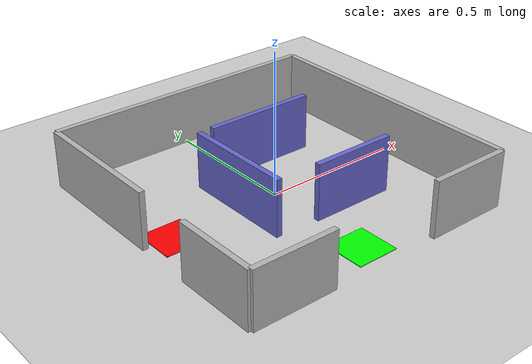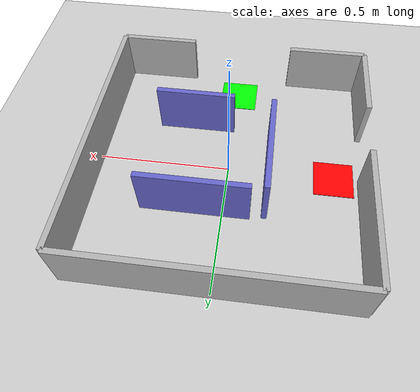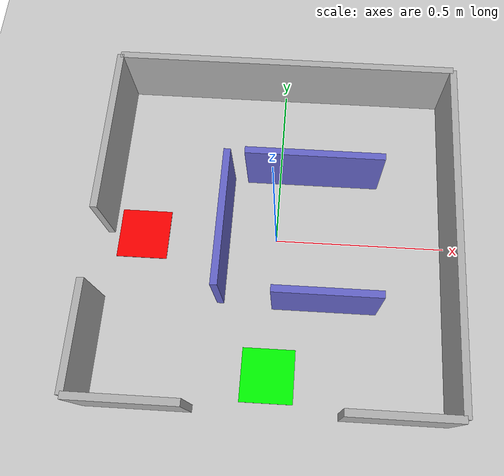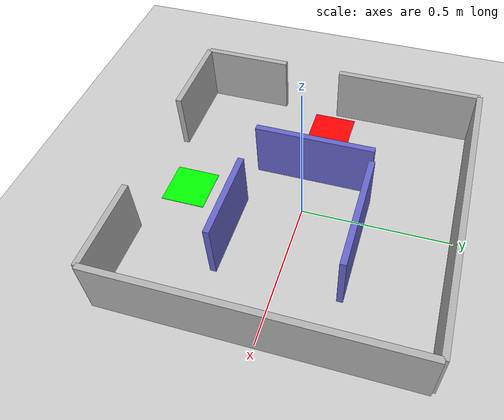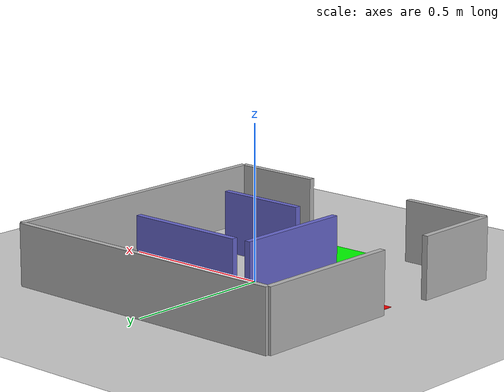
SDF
<?xml version="1.0" ?>
<sdf version="1.6">
  <world name="maze_world">

    <!-- Lighting -->
    <include>
      <uri>model://sun</uri>
    </include>

    <!-- Ground plane -->
    <include>
      <uri>model://ground_plane</uri>
    </include>

    <!-- Physics settings -->
    <physics type="ode">
      <real_time_update_rate>1000.0</real_time_update_rate>
      <max_step_size>0.001</max_step_size>
      <real_time_factor>1</real_time_factor>
    </physics>

    <!-- Maze walls -->
    <!-- Outer walls -->

    <!-- North wall -->
    <model name="wall_north">
      <static>true</static>
      <pose>0 0.5 0.1 0 0 0</pose>
      <link name="link">
        <collision name="collision">
          <geometry>
            <box><size>1.0 0.02 0.2</size></box>
          </geometry>
        </collision>
        <visual name="visual">
          <geometry>
            <box><size>1.0 0.02 0.2</size></box>
          </geometry>
          <material>
            <ambient>0.5 0.5 0.5 1</ambient>
            <diffuse>0.7 0.7 0.7 1</diffuse>
          </material>
        </visual>
      </link>
    </model>

    <!-- South wall (with entrance gap) -->
    <model name="wall_south_left">
      <static>true</static>
      <pose>-0.35 -0.5 0.1 0 0 0</pose>
      <link name="link">
        <collision name="collision">
          <geometry>
            <box><size>0.3 0.02 0.2</size></box>
          </geometry>
        </collision>
        <visual name="visual">
          <geometry>
            <box><size>0.3 0.02 0.2</size></box>
          </geometry>
          <material>
            <ambient>0.5 0.5 0.5 1</ambient>
            <diffuse>0.7 0.7 0.7 1</diffuse>
          </material>
        </visual>
      </link>
    </model>

    <model name="wall_south_right">
      <static>true</static>
      <pose>0.35 -0.5 0.1 0 0 0</pose>
      <link name="link">
        <collision name="collision">
          <geometry>
            <box><size>0.3 0.02 0.2</size></box>
          </geometry>
        </collision>
        <visual name="visual">
          <geometry>
            <box><size>0.3 0.02 0.2</size></box>
          </geometry>
          <material>
            <ambient>0.5 0.5 0.5 1</ambient>
            <diffuse>0.7 0.7 0.7 1</diffuse>
          </material>
        </visual>
      </link>
    </model>

    <!-- East wall -->
    <model name="wall_east">
      <static>true</static>
      <pose>0.5 0 0.1 0 0 0</pose>
      <link name="link">
        <collision name="collision">
          <geometry>
            <box><size>0.02 1.0 0.2</size></box>
          </geometry>
        </collision>
        <visual name="visual">
          <geometry>
            <box><size>0.02 1.0 0.2</size></box>
          </geometry>
          <material>
            <ambient>0.5 0.5 0.5 1</ambient>
            <diffuse>0.7 0.7 0.7 1</diffuse>
          </material>
        </visual>
      </link>
    </model>

    <!-- West wall (with exit gap) -->
    <model name="wall_west_top">
      <static>true</static>
      <pose>-0.5 0.25 0.1 0 0 0</pose>
      <link name="link">
        <collision name="collision">
          <geometry>
            <box><size>0.02 0.5 0.2</size></box>
          </geometry>
        </collision>
        <visual name="visual">
          <geometry>
            <box><size>0.02 0.5 0.2</size></box>
          </geometry>
          <material>
            <ambient>0.5 0.5 0.5 1</ambient>
            <diffuse>0.7 0.7 0.7 1</diffuse>
          </material>
        </visual>
      </link>
    </model>

    <model name="wall_west_bottom">
      <static>true</static>
      <pose>-0.5 -0.35 0.1 0 0 0</pose>
      <link name="link">
        <collision name="collision">
          <geometry>
            <box><size>0.02 0.3 0.2</size></box>
          </geometry>
        </collision>
        <visual name="visual">
          <geometry>
            <box><size>0.02 0.3 0.2</size></box>
          </geometry>
          <material>
            <ambient>0.5 0.5 0.5 1</ambient>
            <diffuse>0.7 0.7 0.7 1</diffuse>
          </material>
        </visual>
      </link>
    </model>

    <!-- Internal maze walls -->

    <!-- Horizontal internal wall 1 -->
    <model name="wall_internal_h1">
      <static>true</static>
      <pose>0.1 0.2 0.1 0 0 0</pose>
      <link name="link">
        <collision name="collision">
          <geometry>
            <box><size>0.4 0.02 0.2</size></box>
          </geometry>
        </collision>
        <visual name="visual">
          <geometry>
            <box><size>0.4 0.02 0.2</size></box>
          </geometry>
          <material>
            <ambient>0.3 0.3 0.6 1</ambient>
            <diffuse>0.4 0.4 0.8 1</diffuse>
          </material>
        </visual>
      </link>
    </model>

    <!-- Vertical internal wall 1 -->
    <model name="wall_internal_v1">
      <static>true</static>
      <pose>-0.15 0 0.1 0 0 0</pose>
      <link name="link">
        <collision name="collision">
          <geometry>
            <box><size>0.02 0.4 0.2</size></box>
          </geometry>
        </collision>
        <visual name="visual">
          <geometry>
            <box><size>0.02 0.4 0.2</size></box>
          </geometry>
          <material>
            <ambient>0.3 0.3 0.6 1</ambient>
            <diffuse>0.4 0.4 0.8 1</diffuse>
          </material>
        </visual>
      </link>
    </model>

    <!-- Horizontal internal wall 2 -->
    <model name="wall_internal_h2">
      <static>true</static>
      <pose>0.15 -0.2 0.1 0 0 0</pose>
      <link name="link">
        <collision name="collision">
          <geometry>
            <box><size>0.3 0.02 0.2</size></box>
          </geometry>
        </collision>
        <visual name="visual">
          <geometry>
            <box><size>0.3 0.02 0.2</size></box>
          </geometry>
          <material>
            <ambient>0.3 0.3 0.6 1</ambient>
            <diffuse>0.4 0.4 0.8 1</diffuse>
          </material>
        </visual>
      </link>
    </model>

    <!-- Start marker (green) -->
    <model name="start_marker">
      <static>true</static>
      <pose>0 -0.4 0.001 0 0 0</pose>
      <link name="link">
        <visual name="visual">
          <geometry>
            <box><size>0.15 0.15 0.002</size></box>
          </geometry>
          <material>
            <ambient>0 0.8 0 1</ambient>
            <diffuse>0 1 0 1</diffuse>
          </material>
        </visual>
      </link>
    </model>

    <!-- Goal marker (red) -->
    <model name="goal_marker">
      <static>true</static>
      <pose>-0.4 0 0.001 0 0 0</pose>
      <link name="link">
        <visual name="visual">
          <geometry>
            <box><size>0.15 0.15 0.002</size></box>
          </geometry>
          <material>
            <ambient>0.8 0 0 1</ambient>
            <diffuse>1 0 0 1</diffuse>
          </material>
        </visual>
      </link>
    </model>

  </world>
</sdf>
